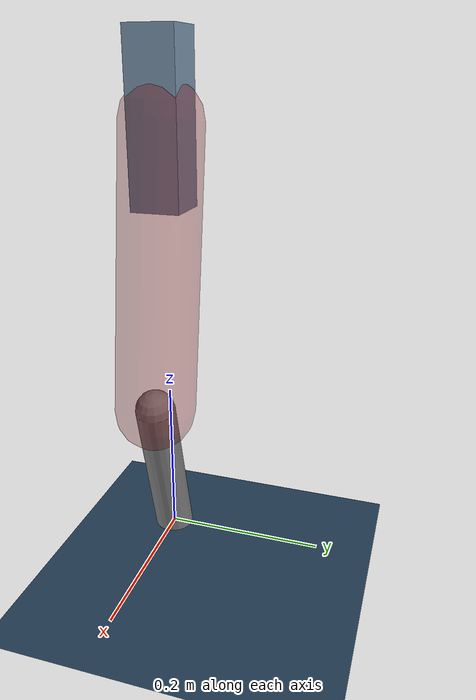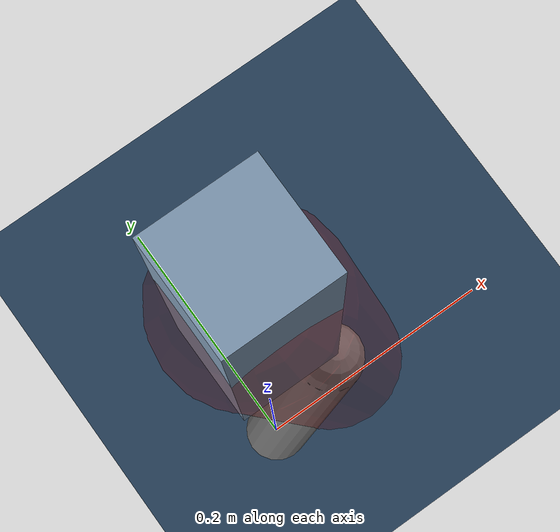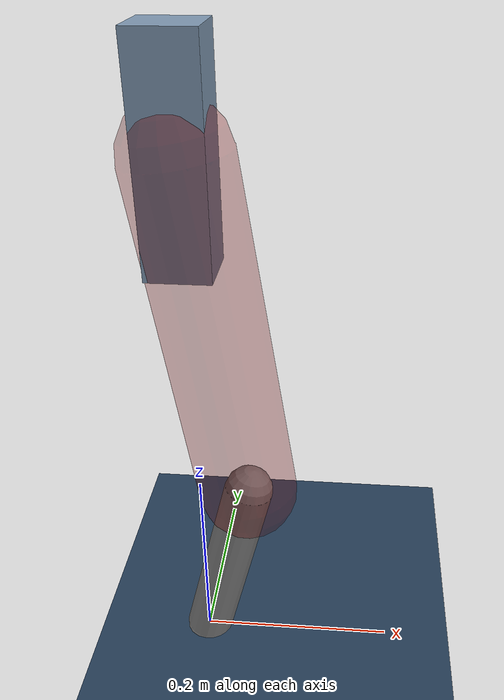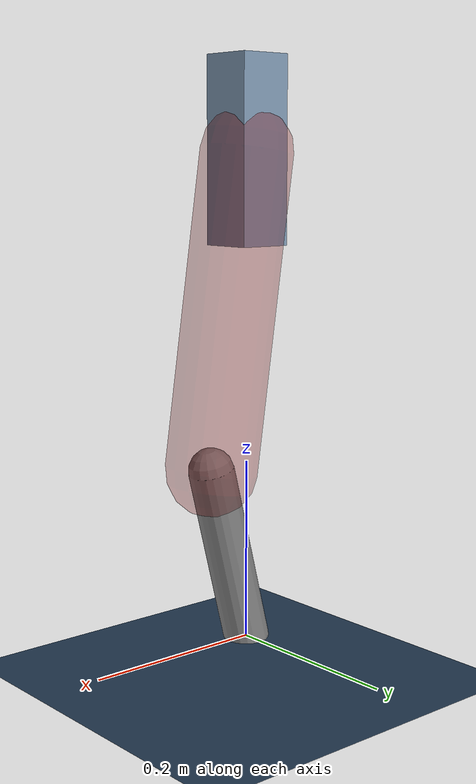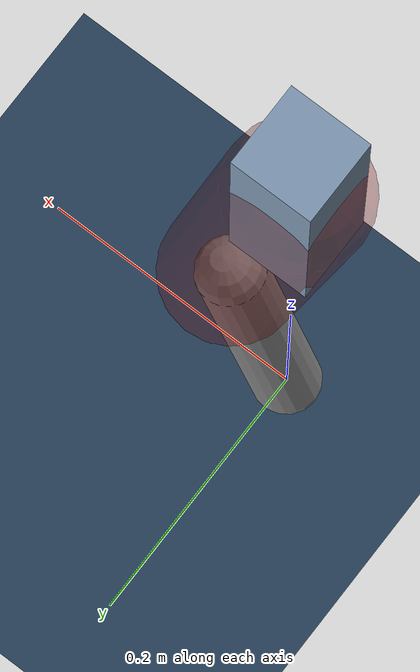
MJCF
<mujoco model="Hopper2D">
	<compiler inertiafromgeom="true" angle="radian" />
	<option timestep="0.001" integrator="implicit" cone="elliptic" solver="Newton" tolerance="1e-10" />

	<default>
		<geom contype="1" conaffinity="1" condim="3" friction="2 0.005 0.0001" solref="0.005 1" />
		<joint limited="true" damping="0.1" />
	</default>

	<asset>
		<texture name="skybox" type="skybox" builtin="gradient" rgb1=".4 .6 .8" rgb2="0 0 0" width="800" height="800" />
		<texture name="grid" type="2d" builtin="checker" rgb1=".1 .2 .3" rgb2=".2 .3 .4" width="300" height="300" mark="edge" markrgb=".2 .3 .4" />
		<material name="ground" texture="grid" texrepeat="1 1" texuniform="true" reflectance="0.1" />
		<material name="leg" rgba="0.5 0.6 0.7 1" />
	</asset>

	<worldbody>

		<geom name="floor" type="plane" size="5 5 0.25" material="ground" />

		<light directional="false" diffuse="0.8 0.8 0.8" specular="0.3 0.3 0.3" pos="0 0 2" dir="0 0 -1" />
		<light mode="targetbodycom" target="base" directional="false" diffuse="0.8 0.8 0.8" specular="0.3 0.3 0.3" pos="0 0 2" dir="0 0 -1" />

		<camera name="fixed" pos="0 -2 1" xyaxes="1 0 0 0 0 1" />
		<camera name="tracking" mode="trackcom" pos="0 -3 1" />

		<body name="root" pos="0 0 0.5365672565466728">
			<joint name="slide_x" type="slide" axis="1 0 0" range="-100 100" />
			<joint name="slide_z" type="slide" axis="0 0 1" range="0 10" />

			<body name="base" pos="0 0 0">
				<geom name="torso" type="box" size="0.03 0.03 0.1" mass="2.872" material="leg" />

				<body name="link1" pos="0 0 0" euler="0 1.4239544124119217 0">
					<joint type="hinge" axis="0 -1 0" pos="0 0 0" name="hinge1" limited="true" range="-3.14 3.14" stiffness="0" damping="0.1" />
					<geom name="thigh" type="capsule" fromto="0 0 0 0.3433183651112348 0 0" size="0.05" rgba="0.5 0 0 0.3" mass="1.1078914223114573" />

					<body name="link2" pos="0.3433183651112348 0 0" euler="0 0.39657770167779594 0">
						<joint type="hinge" axis="0 -1 0" pos="0 0 0" name="hinge2" limited="true" range="-3.14 3.14" stiffness="0" damping="0.1" />
						<geom name="shank" type="capsule" fromto="0 0 0 0.20324889143543803 0 0" size="0.025" mass="0.4036240022918942" />

					</body>
				</body>
			</body>
		</body>
	</worldbody>

	<actuator>
		<motor name="torque1" joint="hinge1" ctrlrange="-97.59659521788167 97.59659521788167" ctrllimited="true" gear="1" />
		<motor name="torque2" joint="hinge2" ctrlrange="-113.22452147984689 113.22452147984689" ctrllimited="true" gear="1" />
	</actuator>
</mujoco>
